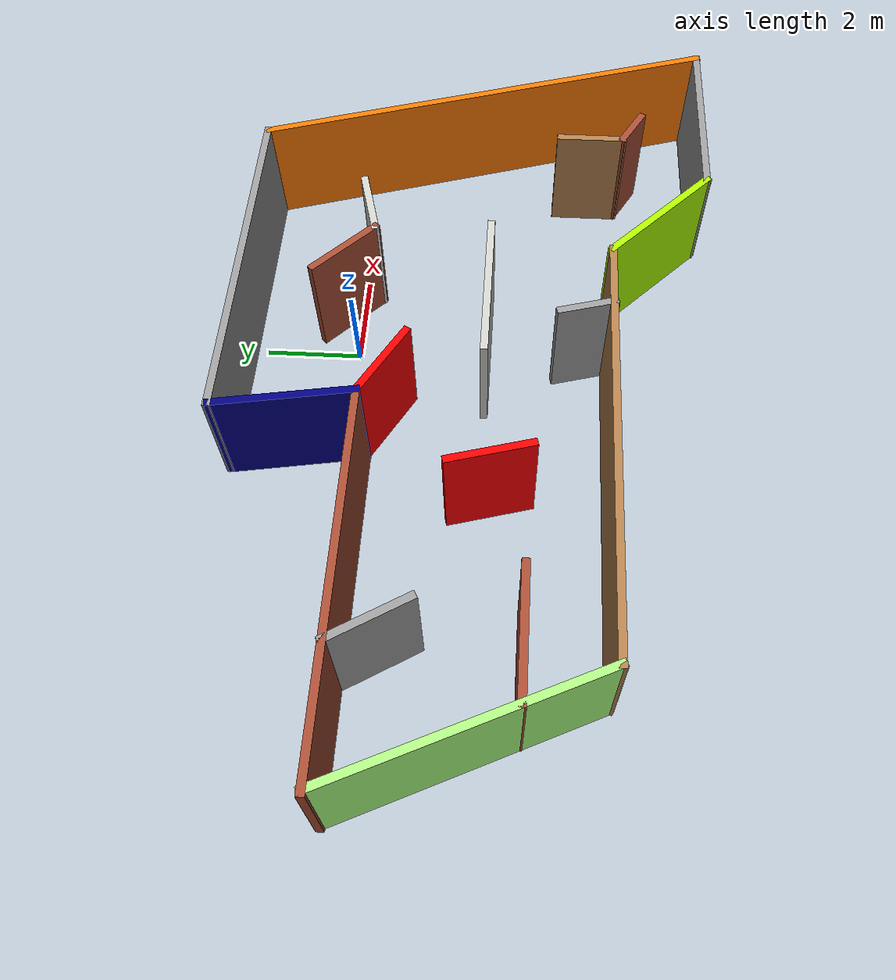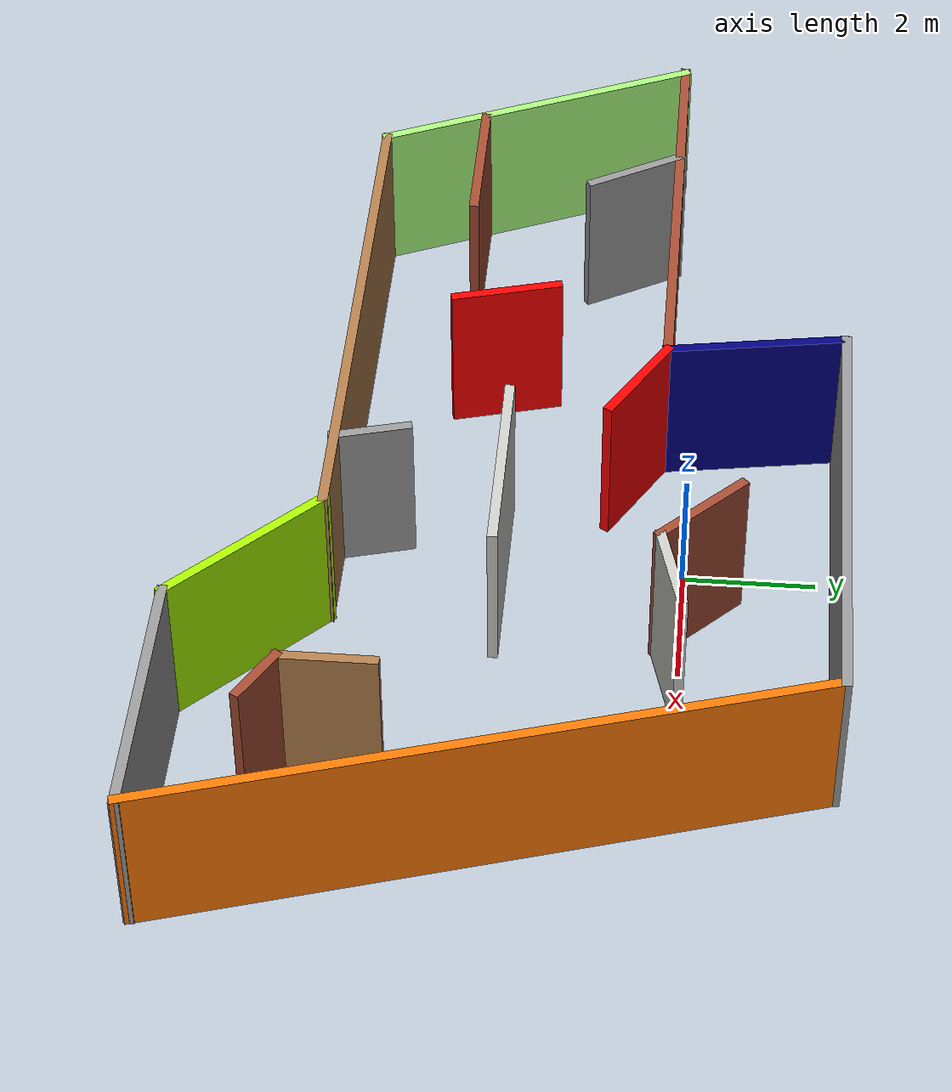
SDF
<?xml version='1.0'?>
<sdf version='1.6'>
  <model name='mynewworld3'>
    <pose frame=''>-1.22552 -2.4857 0 0 -0 0</pose>
    <link name='Wall_0'>
      <collision name='Wall_0_Collision'>
        <geometry>
          <box>
            <size>7.25 0.15 2.5</size>
          </box>
        </geometry>
        <pose frame=''>0 0 1.25 0 -0 0</pose>
      </collision>
      <visual name='Wall_0_Visual'>
        <pose frame=''>0 0 1.25 0 -0 0</pose>
        <geometry>
          <box>
            <size>7.25 0.15 2.5</size>
          </box>
        </geometry>
        <material>
          <script>
            <uri>file://media/materials/scripts/gazebo.material</uri>
            <name>Gazebo/Bricks</name>
          </script>
          <ambient>1 1 1 1</ambient>
        </material>
        <meta>
          <layer>0</layer>
        </meta>
      </visual>
      <pose frame=''>-4.78279 2.08052 0 0 -0 0</pose>
    </link>
    <link name='Wall_1'>
      <collision name='Wall_1_Collision'>
        <geometry>
          <box>
            <size>2.85478 0.15 2.5</size>
          </box>
        </geometry>
        <pose frame=''>0 0 1.25 0 -0 0</pose>
      </collision>
      <visual name='Wall_1_Visual'>
        <pose frame=''>0 0 1.25 0 -0 0</pose>
        <geometry>
          <box>
            <size>2.85478 0.15 2.5</size>
          </box>
        </geometry>
        <material>
          <script>
            <uri>file://media/materials/scripts/gazebo.material</uri>
            <name>Gazebo/Grey</name>
          </script>
          <ambient>0 0 0.498039 1</ambient>
        </material>
        <meta>
          <layer>0</layer>
        </meta>
      </visual>
      <pose frame=''>-1.41633 3.41585 0 0 -0 1.7298</pose>
    </link>
    <link name='Wall_11'>
      <collision name='Wall_11_Collision'>
        <geometry>
          <box>
            <size>2.5 0.15 2.5</size>
          </box>
        </geometry>
        <pose frame=''>0 0 1.25 0 -0 0</pose>
      </collision>
      <visual name='Wall_11_Visual'>
        <pose frame=''>0 0 1.25 0 -0 0</pose>
        <geometry>
          <box>
            <size>2.5 0.15 2.5</size>
          </box>
        </geometry>
        <material>
          <script>
            <uri>file://media/materials/scripts/gazebo.material</uri>
            <name>Gazebo/Bricks</name>
          </script>
          <ambient>1 1 1 1</ambient>
        </material>
        <meta>
          <layer>0</layer>
        </meta>
      </visual>
      <pose frame=''>-5.66928 -1.15879 0 0 -0 0</pose>
    </link>
    <link name='Wall_13'>
      <collision name='Wall_13_Collision'>
        <geometry>
          <box>
            <size>1.75 0.15 2.5</size>
          </box>
        </geometry>
        <pose frame=''>0 0 1.25 0 -0 0</pose>
      </collision>
      <visual name='Wall_13_Visual'>
        <pose frame=''>0 0 1.25 0 -0 0</pose>
        <geometry>
          <box>
            <size>1.75 0.15 2.5</size>
          </box>
        </geometry>
        <material>
          <script>
            <uri>file://media/materials/scripts/gazebo.material</uri>
            <name>Gazebo/Grey</name>
          </script>
          <ambient>1 0 0 1</ambient>
        </material>
        <meta>
          <layer>0</layer>
        </meta>
      </visual>
      <pose frame=''>-0.509379 1.68052 0 0 0 -0.523599</pose>
    </link>
    <link name='Wall_15'>
      <collision name='Wall_15_Collision'>
        <geometry>
          <box>
            <size>3.25 0.15 2.5</size>
          </box>
        </geometry>
        <pose frame=''>0 0 1.25 0 -0 0</pose>
      </collision>
      <visual name='Wall_15_Visual'>
        <pose frame=''>0 0 1.25 0 -0 0</pose>
        <geometry>
          <box>
            <size>3.25 0.15 2.5</size>
          </box>
        </geometry>
        <material>
          <script>
            <uri>file://media/materials/scripts/gazebo.material</uri>
            <name>Gazebo/CeilingTiled</name>
          </script>
          <ambient>0 0 0 1</ambient>
        </material>
        <meta>
          <layer>0</layer>
        </meta>
      </visual>
      <pose frame=''>1.43557 -0.241087 0 0 -0 0</pose>
    </link>
    <link name='Wall_17'>
      <collision name='Wall_17_Collision'>
        <geometry>
          <box>
            <size>1.75 0.15 2.5</size>
          </box>
        </geometry>
        <pose frame=''>0 0 1.25 0 -0 0</pose>
      </collision>
      <visual name='Wall_17_Visual'>
        <pose frame=''>0 0 1.25 0 -0 0</pose>
        <geometry>
          <box>
            <size>1.75 0.15 2.5</size>
          </box>
        </geometry>
        <material>
          <script>
            <uri>file://media/materials/scripts/gazebo.material</uri>
            <name>Gazebo/Bricks</name>
          </script>
          <ambient>1 1 1 1</ambient>
        </material>
        <meta>
          <layer>0</layer>
        </meta>
      </visual>
      <pose frame=''>2.22549 2.7111 0 0 0 -0.785398</pose>
    </link>
    <link name='Wall_18'>
      <collision name='Wall_18_Collision'>
        <geometry>
          <box>
            <size>1.5 0.15 2.5</size>
          </box>
        </geometry>
        <pose frame=''>0 0 1.25 0 -0 0</pose>
      </collision>
      <visual name='Wall_18_Visual'>
        <pose frame=''>0 0 1.25 0 -0 0</pose>
        <geometry>
          <box>
            <size>1.5 0.15 2.5</size>
          </box>
        </geometry>
        <material>
          <script>
            <uri>file://media/materials/scripts/gazebo.material</uri>
            <name>Gazebo/CeilingTiled</name>
          </script>
          <ambient>0.333333 0.333333 0 1</ambient>
        </material>
        <meta>
          <layer>0</layer>
        </meta>
      </visual>
      <pose frame=''>3.44318 2.32012 0 0 -0 0.261799</pose>
    </link>
    <link name='Wall_2'>
      <collision name='Wall_2_Collision'>
        <geometry>
          <box>
            <size>7.25 0.15 2.5</size>
          </box>
        </geometry>
        <pose frame=''>0 0 1.25 0 -0 0</pose>
      </collision>
      <visual name='Wall_2_Visual'>
        <pose frame=''>0 0 1.25 0 -0 0</pose>
        <geometry>
          <box>
            <size>7.25 0.15 2.5</size>
          </box>
        </geometry>
        <material>
          <script>
            <uri>file://media/materials/scripts/gazebo.material</uri>
            <name>Gazebo/Grey</name>
          </script>
          <ambient>1 1 1 1</ambient>
        </material>
        <meta>
          <layer>0</layer>
        </meta>
      </visual>
      <pose frame=''>1.91954 4.78176 0 0 -0 0</pose>
    </link>
    <link name='Wall_20'>
      <collision name='Wall_20_Collision'>
        <geometry>
          <box>
            <size>1.5 0.15 2.5</size>
          </box>
        </geometry>
        <pose frame=''>0 0 1.25 0 -0 0</pose>
      </collision>
      <visual name='Wall_20_Visual'>
        <pose frame=''>0 0 1.25 0 -0 0</pose>
        <geometry>
          <box>
            <size>1.5 0.15 2.5</size>
          </box>
        </geometry>
        <material>
          <script>
            <uri>file://media/materials/scripts/gazebo.material</uri>
            <name>Gazebo/Wood</name>
          </script>
          <ambient>1 1 1 1</ambient>
        </material>
        <meta>
          <layer>0</layer>
        </meta>
      </visual>
      <pose frame=''>5.57535 -2.32324 0 0 0 -1.5708</pose>
    </link>
    <link name='Wall_21'>
      <collision name='Wall_21_Collision'>
        <geometry>
          <box>
            <size>1 0.15 2.5</size>
          </box>
        </geometry>
        <pose frame=''>0 0 1.25 0 -0 0</pose>
      </collision>
      <visual name='Wall_21_Visual'>
        <pose frame=''>0 0 1.25 0 -0 0</pose>
        <geometry>
          <box>
            <size>1 0.15 2.5</size>
          </box>
        </geometry>
        <material>
          <script>
            <uri>file://media/materials/scripts/gazebo.material</uri>
            <name>Gazebo/Bricks</name>
          </script>
          <ambient>1 1 1 1</ambient>
        </material>
        <meta>
          <layer>0</layer>
        </meta>
      </visual>
      <pose frame=''>5.94341 -3.21074 0 0 0 -0.523599</pose>
    </link>
    <link name='Wall_23'>
      <collision name='Wall_23_Collision'>
        <geometry>
          <box>
            <size>1.75 0.15 2.5</size>
          </box>
        </geometry>
        <pose frame=''>0 0 1.25 0 -0 0</pose>
      </collision>
      <visual name='Wall_23_Visual'>
        <pose frame=''>0 0 1.25 0 -0 0</pose>
        <geometry>
          <box>
            <size>1.75 0.15 2.5</size>
          </box>
        </geometry>
        <material>
          <script>
            <uri>file://media/materials/scripts/gazebo.material</uri>
            <name>Gazebo/Grey</name>
          </script>
          <ambient>1 0 0 1</ambient>
        </material>
        <meta>
          <layer>0</layer>
        </meta>
      </visual>
      <pose frame=''>-2.38518 -0.463204 0 0 0 -1.309</pose>
    </link>
    <link name='Wall_25'>
      <collision name='Wall_25_Collision'>
        <geometry>
          <box>
            <size>1.25 0.15 2.5</size>
          </box>
        </geometry>
        <pose frame=''>0 0 1.25 0 -0 0</pose>
      </collision>
      <visual name='Wall_25_Visual'>
        <pose frame=''>0 0 1.25 0 -0 0</pose>
        <geometry>
          <box>
            <size>1.25 0.15 2.5</size>
          </box>
        </geometry>
        <material>
          <script>
            <uri>file://media/materials/scripts/gazebo.material</uri>
            <name>Gazebo/Grey</name>
          </script>
          <ambient>1 1 1 1</ambient>
        </material>
        <meta>
          <layer>0</layer>
        </meta>
      </visual>
      <pose frame=''>0.96683 -2.21823 0 0 -0 1.8326</pose>
    </link>
    <link name='Wall_3'>
      <collision name='Wall_3_Collision'>
        <geometry>
          <box>
            <size>10.0686 0.15 2.5</size>
          </box>
        </geometry>
        <pose frame=''>0 0 1.25 0 -0 0</pose>
      </collision>
      <visual name='Wall_3_Visual'>
        <pose frame=''>0 0 1.25 0 -0 0</pose>
        <geometry>
          <box>
            <size>10.0686 0.15 2.5</size>
          </box>
        </geometry>
        <material>
          <script>
            <uri>file://media/materials/scripts/gazebo.material</uri>
            <name>Gazebo/Grey</name>
          </script>
          <ambient>0.996078 0.47451 0.0196078 1</ambient>
        </material>
        <meta>
          <layer>0</layer>
        </meta>
      </visual>
      <pose frame=''>6.89198 0.000238 0 0 0 -1.27989</pose>
    </link>
    <link name='Wall_4'>
      <collision name='Wall_4_Collision'>
        <geometry>
          <box>
            <size>4 0.15 2.5</size>
          </box>
        </geometry>
        <pose frame=''>0 0 1.25 0 -0 0</pose>
      </collision>
      <visual name='Wall_4_Visual'>
        <pose frame=''>0 0 1.25 0 -0 0</pose>
        <geometry>
          <box>
            <size>4 0.15 2.5</size>
          </box>
        </geometry>
        <material>
          <script>
            <uri>file://media/materials/scripts/gazebo.material</uri>
            <name>Gazebo/Grey</name>
          </script>
          <ambient>1 1 1 1</ambient>
        </material>
        <meta>
          <layer>0</layer>
        </meta>
      </visual>
      <pose frame=''>6.38943 -4.7507 0 0 -0 3.14159</pose>
    </link>
    <link name='Wall_5'>
      <collision name='Wall_5_Collision'>
        <geometry>
          <box>
            <size>3 0.15 2.5</size>
          </box>
        </geometry>
        <pose frame=''>0 0 1.25 0 -0 0</pose>
      </collision>
      <visual name='Wall_5_Visual'>
        <pose frame=''>0 0 1.25 0 -0 0</pose>
        <geometry>
          <box>
            <size>3 0.15 2.5</size>
          </box>
        </geometry>
        <material>
          <script>
            <uri>file://media/materials/scripts/gazebo.material</uri>
            <name>Gazebo/Grey</name>
          </script>
          <ambient>0.666667 1 0 1</ambient>
        </material>
        <meta>
          <layer>0</layer>
        </meta>
      </visual>
      <pose frame=''>3.4568 -3.74307 0 0 -0 2.35619</pose>
    </link>
    <link name='Wall_6'>
      <collision name='Wall_6_Collision'>
        <geometry>
          <box>
            <size>8.75 0.15 2.5</size>
          </box>
        </geometry>
        <pose frame=''>0 0 1.25 0 -0 0</pose>
      </collision>
      <visual name='Wall_6_Visual'>
        <pose frame=''>0 0 1.25 0 -0 0</pose>
        <geometry>
          <box>
            <size>8.75 0.15 2.5</size>
          </box>
        </geometry>
        <material>
          <script>
            <uri>file://media/materials/scripts/gazebo.material</uri>
            <name>Gazebo/Wood</name>
          </script>
          <ambient>1 1 1 1</ambient>
        </material>
        <meta>
          <layer>0</layer>
        </meta>
      </visual>
      <pose frame=''>-1.85082 -2.73544 0 0 -0 3.14159</pose>
    </link>
    <link name='Wall_7'>
      <collision name='Wall_7_Collision'>
        <geometry>
          <box>
            <size>5.42464 0.15 2.5</size>
          </box>
        </geometry>
        <pose frame=''>0 0 1.25 0 -0 0</pose>
      </collision>
      <visual name='Wall_7_Visual'>
        <pose frame=''>0 0 1.25 0 -0 0</pose>
        <geometry>
          <box>
            <size>5.42464 0.15 2.5</size>
          </box>
        </geometry>
        <material>
          <script>
            <uri>file://media/materials/scripts/gazebo.material</uri>
            <name>Gazebo/Grey</name>
          </script>
          <ambient>0.666667 1 0.498039 1</ambient>
        </material>
        <meta>
          <layer>0</layer>
        </meta>
      </visual>
      <pose frame=''>-7.22651 -0.327464 0 0 -0 1.99092</pose>
    </link>
    <link name='Wall_9'>
      <collision name='Wall_9_Collision'>
        <geometry>
          <box>
            <size>1.75 0.15 2.5</size>
          </box>
        </geometry>
        <pose frame=''>0 0 1.25 0 -0 0</pose>
      </collision>
      <visual name='Wall_9_Visual'>
        <pose frame=''>0 0 1.25 0 -0 0</pose>
        <geometry>
          <box>
            <size>1.75 0.15 2.5</size>
          </box>
        </geometry>
        <material>
          <script>
            <uri>file://media/materials/scripts/gazebo.material</uri>
            <name>Gazebo/Grey</name>
          </script>
          <ambient>1 1 1 1</ambient>
        </material>
        <meta>
          <layer>0</layer>
        </meta>
      </visual>
      <pose frame=''>-5.58775 1.39095 0 0 0 -1.0472</pose>
    </link>
    <static>1</static>
  </model>
</sdf>
